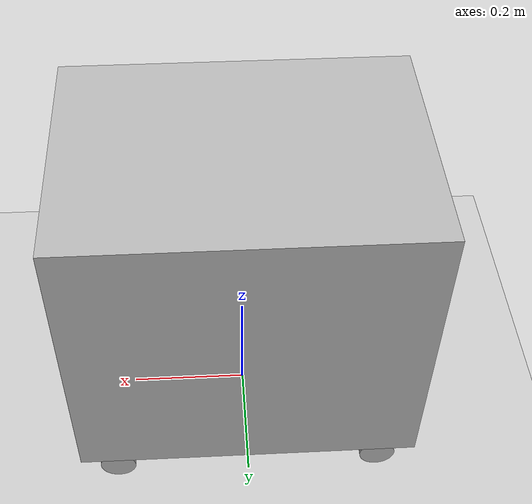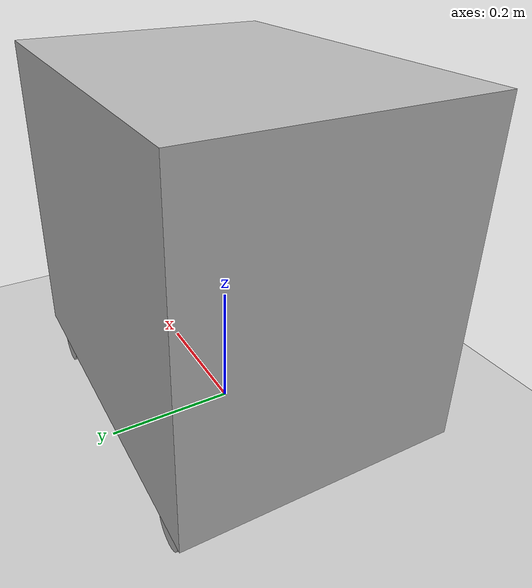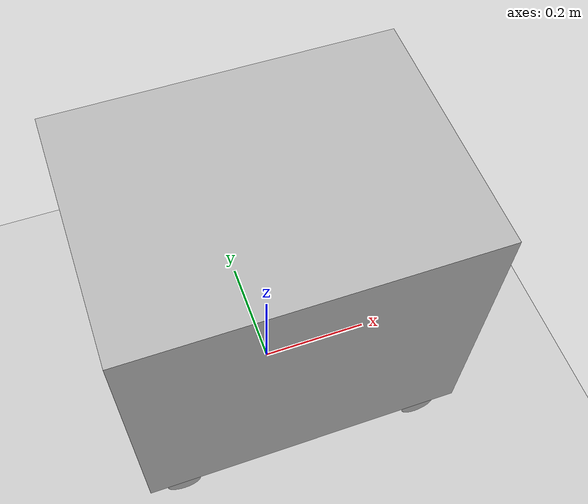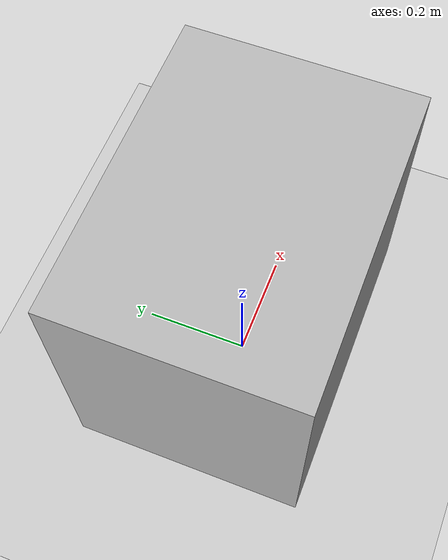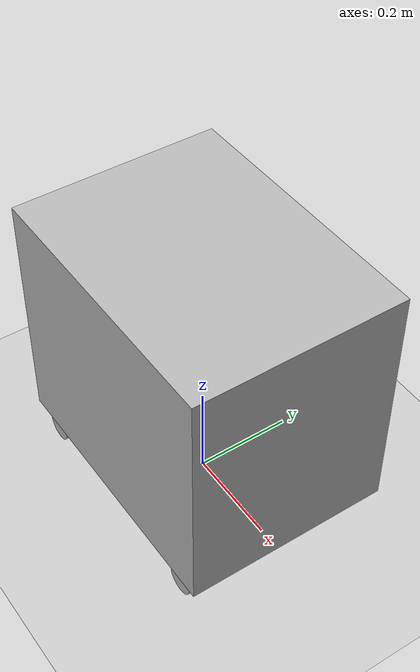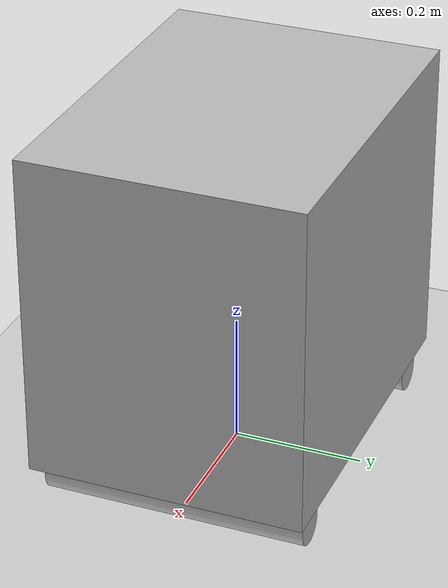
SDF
<?xml version="1.0" ?>
<sdf version="1.5">
  <world name="default">

    <!-- Sky with clouds -->
    <scene>
      <sky>
        <clouds>
            <speed>0</speed>
        </clouds>
      </sky>
    </scene>

    <!-- A global light source -->
    <include>
      <uri>model://sun</uri>
    </include>
    <!-- A ground plane -->
    <include>
      <uri>model://ground_plane</uri>
    </include>

      <!-- Focus camera on a desired location -->
    <gui fullscreen='0'>
      <camera name='user_camera'>
        <!-- pose is (m) X Y Z (rad) R P Y -->
        <pose>6.927360 -3.376610 0.840080 0.000000 0.0 2.356190</pose>
        <view_controller>orbit</view_controller>
      </camera>
    </gui>

    <model name='drawer'>
      <link name='forward_wheel'>
        <pose>0.2235 0.0 0.03 1.57 0 0</pose>
          <collision name='collision'>
          <geometry>
            <cylinder>
              <radius>.03</radius>
              <length>.403</length>
            </cylinder>
          </geometry>
          <max_contacts>10</max_contacts>
        </collision>
        <visual name='visual'>
          <geometry>
            <cylinder>
              <radius>.03</radius>
              <length>.403</length>
            </cylinder>
          </geometry>
        </visual>
        <self_collide>1</self_collide>
        <inertial>
          <inertia>
            <ixx>1</ixx>
            <ixy>0</ixy>
            <ixz>0</ixz>
            <iyy>1</iyy>
            <iyz>0</iyz>
            <izz>1</izz>
          </inertia>
          <mass>1</mass>
        </inertial>
      </link>
      <link name='box'>
        <pose>0.0 0.0 0.31 0 0 0</pose>
          <collision name='collision_box'>
          <geometry>
            <box>
	      <size>0.567 0.423 0.5</size>
            </box>
          </geometry>
          <max_contacts>10</max_contacts>
        </collision>
        <visual name='visual_box'>
          <geometry>
            <box>
	      <size>0.567 0.423 0.5</size>
            </box>
          </geometry>
        </visual>
        <self_collide>1</self_collide>
        <inertial>
          <inertia>
            <ixx>1</ixx>
            <ixy>0</ixy>
            <ixz>0</ixz>
            <iyy>1</iyy>
            <iyz>0</iyz>
            <izz>1</izz>
          </inertia>
          <mass>20</mass>
        </inertial>
      </link>
      <link name='backword_wheel'>
        <pose>-0.2235 0.0 0.03 1.57 0 0</pose>
          <collision name='collision'>
          <geometry>
            <cylinder>
              <radius>.03</radius>
              <length>.403</length>
            </cylinder>
          </geometry>
          <max_contacts>10</max_contacts>
        </collision>
        <visual name='visual'>
          <geometry>
            <cylinder>
              <radius>.03</radius>
              <length>.403</length>
            </cylinder>
          </geometry>
        </visual>
        <self_collide>1</self_collide>
        <inertial>
          <inertia>
            <ixx>1</ixx>
            <ixy>0</ixy>
            <ixz>0</ixz>
            <iyy>1</iyy>
            <iyz>0</iyz>
            <izz>1</izz>
          </inertia>
          <mass>1</mass>
        </inertial>
      </link>
      <joint name='joint1' type='fixed'>
        <parent>forward_wheel</parent>
        <child>box</child>
        <pose>0.0 0 0 -1.57 0 0</pose>
      </joint>
      <joint name='joint2' type='fixed'>
        <parent>box</parent>
        <child>backword_wheel</child>
        <pose>0.0 0 0 0.0 0 0</pose>
      </joint>
    <static>0</static>
  </model>
  </world>

</sdf>
